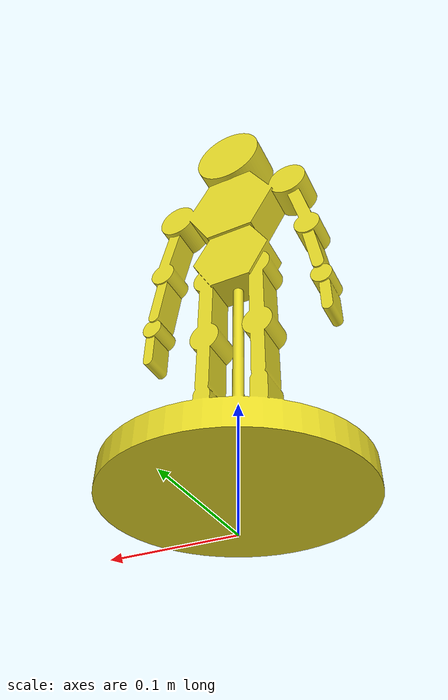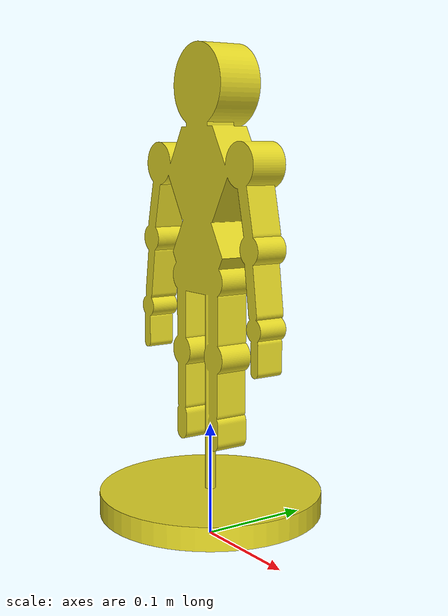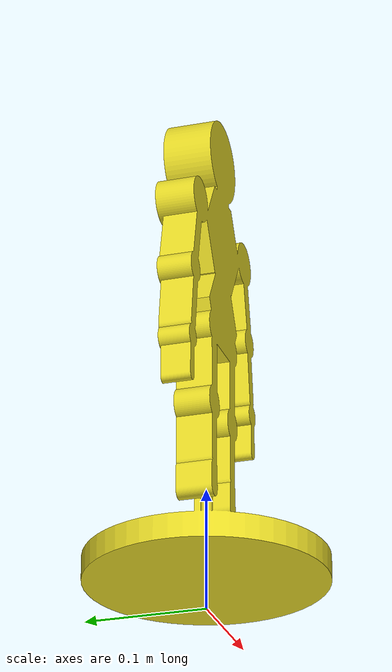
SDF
<?xml version="1.0" ?>
<sdf version="1.5">
  <model name="aman">
    <static>true</static>
    <link name="link">
      <visual name="visual">
        <pose>-0.097875 0.097875 0.022 1.570796 0 0</pose>
        <geometry>
          <mesh>
            <uri>file:///home/zf/catkin_ws/src/limo_gazebo_sim/meshes/man.STL</uri>
            <scale>0.00135 0.00135 0.00135</scale>
          </mesh>
        </geometry>
        <material>
          <ambient>1.0 0.8 0.0 1</ambient>
          <diffuse>1.0 0.8 0.0 1</diffuse>
          <specular>0.1 0.1 0.1 1</specular>
          <script>
            <uri>file://media/materials/scripts/gazebo.material</uri>
            <name>Gazebo/Yellow</name>
          </script>
        </material>
      </visual>
      <collision name="collision">
        <pose>-0.097875 0.097875 0.022 1.570796 0 0</pose>
        <geometry>
          <mesh>
            <uri>file:///home/zf/catkin_ws/src/limo_gazebo_sim/meshes/man.STL</uri>
            <scale>0.00135 0.00135 0.00135</scale>
          </mesh>
        </geometry>
      </collision>
    </link>
  </model>
</sdf>
